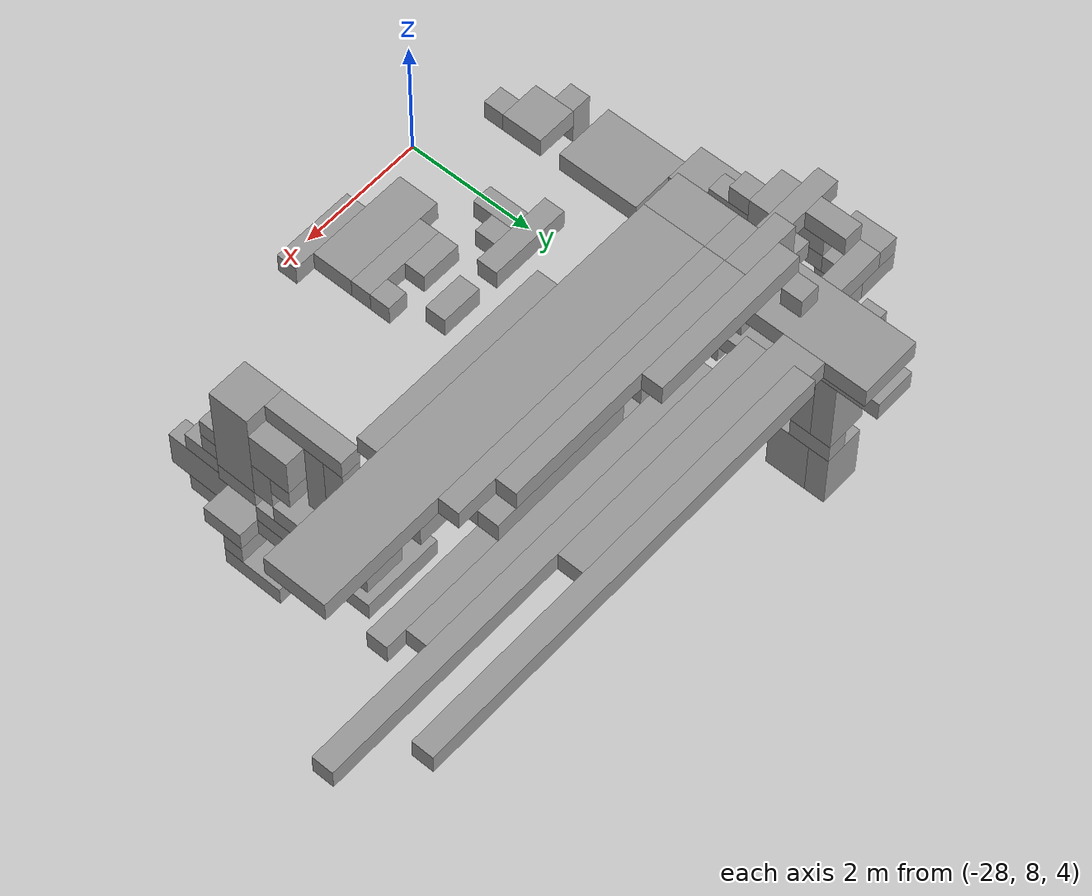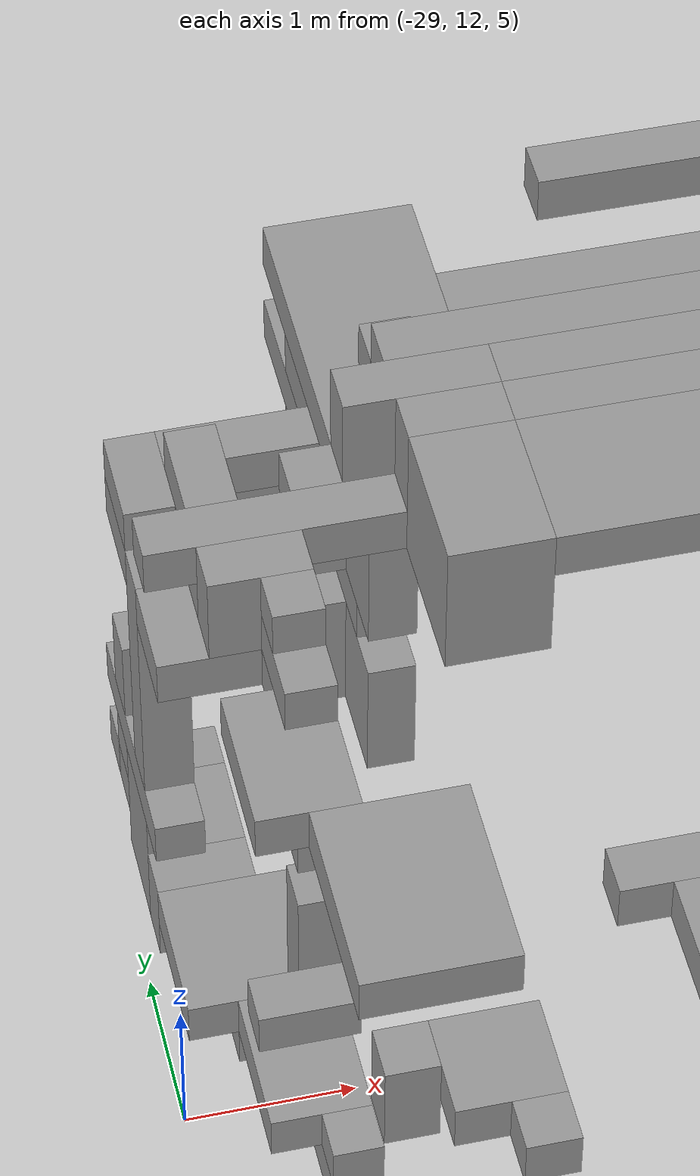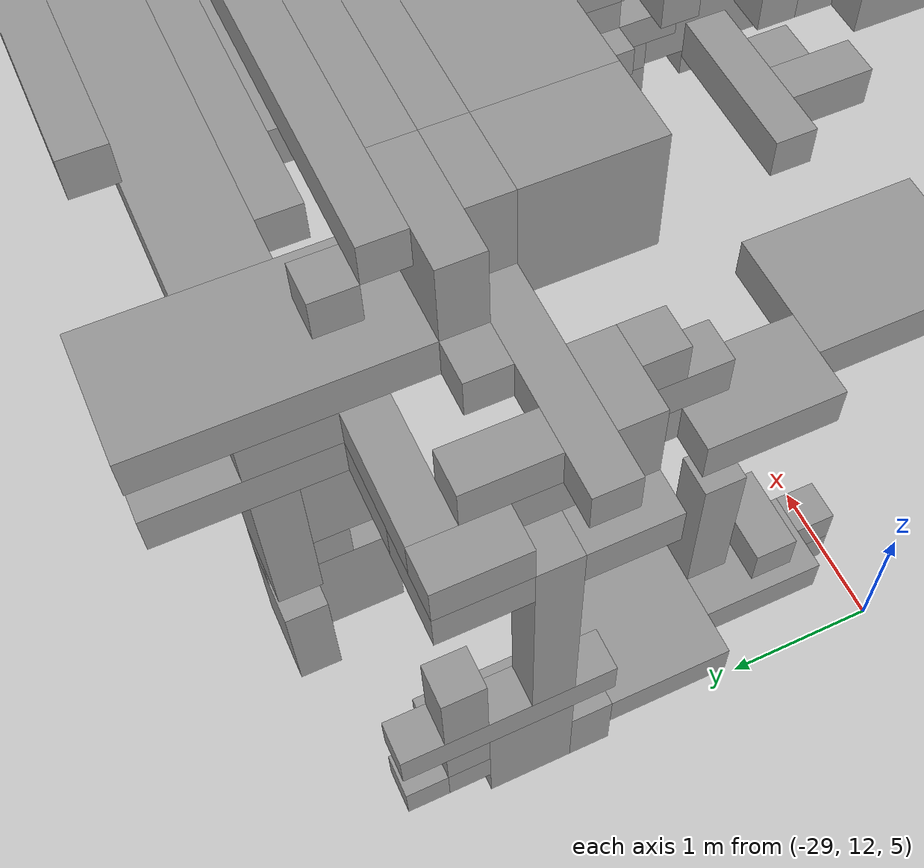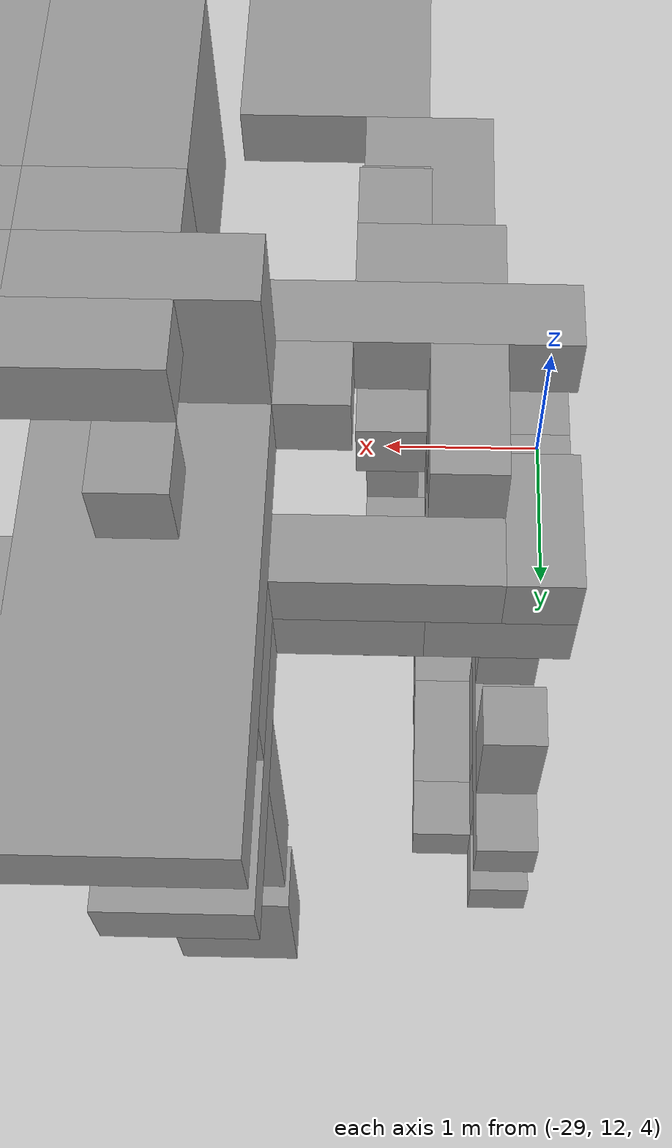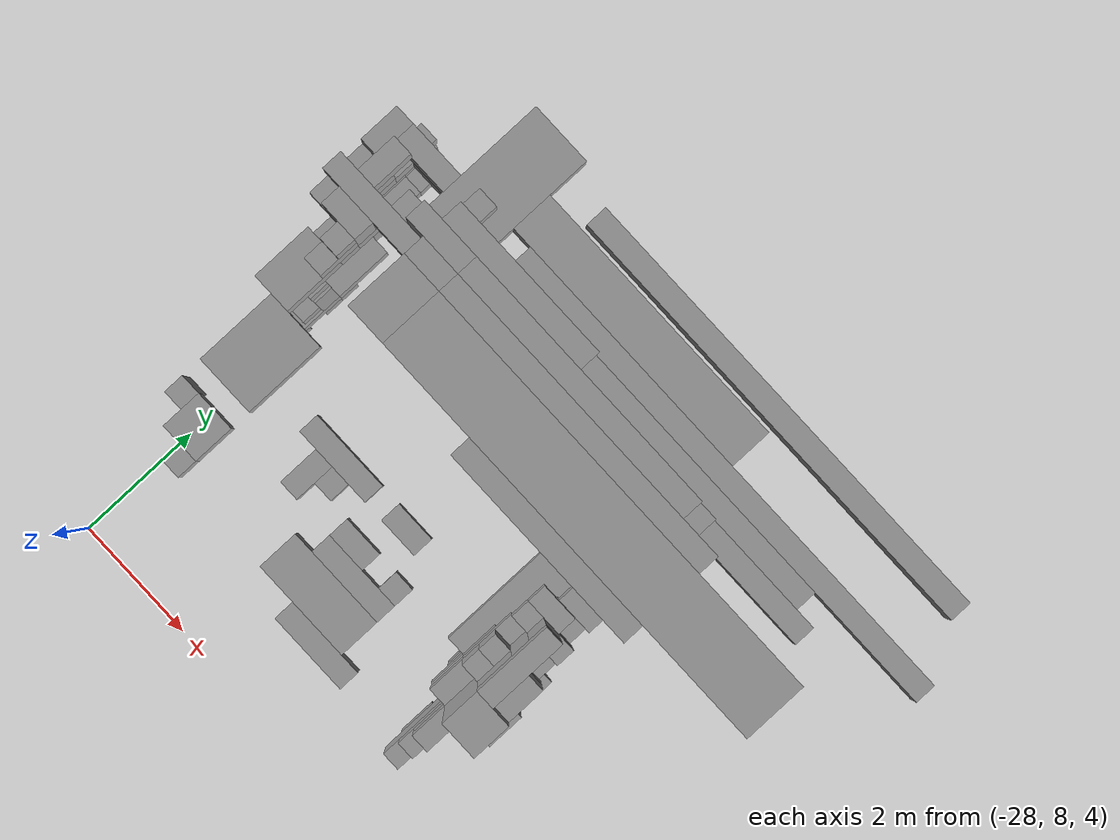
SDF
<sdf version="1.6">
 <world name="bt_world">
  <include><uri>model://sun</uri></include>
  <model name="obstacle_88">
   <static>true</static>
   <pose>-28.349999999999998 13.35 4.6499999999999995 0 0 0</pose>
   <link name="link">
    <collision name="collision">
     <geometry><box><size>0.8999999999999999 0.8999999999999999 0.3</size></box></geometry>
    </collision>
    <visual name="visual">
     <geometry><box><size>0.8999999999999999 0.8999999999999999 0.3</size></box></geometry>
     <material><ambient>0.5 0.5 0.5 1</ambient><diffuse>0.6 0.6 0.6 1</diffuse></material>
    </visual>
   </link>
  </model>
  <model name="obstacle_89">
   <static>true</static>
   <pose>-28.349999999999998 13.799999999999999 7.05 0 0 0</pose>
   <link name="link">
    <collision name="collision">
     <geometry><box><size>0.8999999999999999 0.6 0.3</size></box></geometry>
    </collision>
    <visual name="visual">
     <geometry><box><size>0.8999999999999999 0.6 0.3</size></box></geometry>
     <material><ambient>0.5 0.5 0.5 1</ambient><diffuse>0.6 0.6 0.6 1</diffuse></material>
    </visual>
   </link>
  </model>
  <model name="obstacle_90">
   <static>true</static>
   <pose>-28.5 13.95 4.5 0 0 0</pose>
   <link name="link">
    <collision name="collision"><geometry><box><size>0.6 0.3 0.6</size></box></geometry></collision>
    <visual name="visual">
     <geometry><box><size>0.6 0.3 0.6</size></box></geometry>
     <material><ambient>0.5 0.5 0.5 1</ambient><diffuse>0.6 0.6 0.6 1</diffuse></material>
    </visual>
   </link>
  </model>
  <model name="obstacle_91">
   <static>true</static>
   <pose>-28.65 14.549999999999999 5.25 0 0 0</pose>
   <link name="link">
    <collision name="collision"><geometry><box><size>0.3 1.5 0.3</size></box></geometry></collision>
    <visual name="visual">
     <geometry><box><size>0.3 1.5 0.3</size></box></geometry>
     <material><ambient>0.5 0.5 0.5 1</ambient><diffuse>0.6 0.6 0.6 1</diffuse></material>
    </visual>
   </link>
  </model>
  <model name="obstacle_92">
   <static>true</static>
   <pose>-27.75 13.95 7.6499999999999995 0 0 0</pose>
   <link name="link">
    <collision name="collision"><geometry><box><size>2.1 0.3 0.3</size></box></geometry></collision>
    <visual name="visual">
     <geometry><box><size>2.1 0.3 0.3</size></box></geometry>
     <material><ambient>0.5 0.5 0.5 1</ambient><diffuse>0.6 0.6 0.6 1</diffuse></material>
    </visual>
   </link>
  </model>
  <model name="obstacle_93">
   <static>true</static>
   <pose>-28.65 14.399999999999999 4.6499999999999995 0 0 0</pose>
   <link name="link">
    <collision name="collision">
     <geometry><box><size>0.3 0.6 0.8999999999999999</size></box></geometry>
    </collision>
    <visual name="visual">
     <geometry><box><size>0.3 0.6 0.8999999999999999</size></box></geometry>
     <material><ambient>0.5 0.5 0.5 1</ambient><diffuse>0.6 0.6 0.6 1</diffuse></material>
    </visual>
   </link>
  </model>
  <model name="obstacle_94">
   <static>true</static>
   <pose>-28.65 14.25 6.3 0 0 0</pose>
   <link name="link">
    <collision name="collision">
     <geometry><box><size>0.3 0.3 1.7999999999999998</size></box></geometry>
    </collision>
    <visual name="visual">
     <geometry><box><size>0.3 0.3 1.7999999999999998</size></box></geometry>
     <material><ambient>0.5 0.5 0.5 1</ambient><diffuse>0.6 0.6 0.6 1</diffuse></material>
    </visual>
   </link>
  </model>
  <model name="obstacle_95">
   <static>true</static>
   <pose>-28.5 14.7 7.05 0 0 0</pose>
   <link name="link">
    <collision name="collision"><geometry><box><size>0.6 0.6 0.3</size></box></geometry></collision>
    <visual name="visual">
     <geometry><box><size>0.6 0.6 0.3</size></box></geometry>
     <material><ambient>0.5 0.5 0.5 1</ambient><diffuse>0.6 0.6 0.6 1</diffuse></material>
    </visual>
   </link>
  </model>
  <model name="obstacle_96">
   <static>true</static>
   <pose>-28.65 14.7 7.35 0 0 0</pose>
   <link name="link">
    <collision name="collision"><geometry><box><size>0.3 0.6 0.3</size></box></geometry></collision>
    <visual name="visual">
     <geometry><box><size>0.3 0.6 0.3</size></box></geometry>
     <material><ambient>0.5 0.5 0.5 1</ambient><diffuse>0.6 0.6 0.6 1</diffuse></material>
    </visual>
   </link>
  </model>
  <model name="obstacle_97">
   <static>true</static>
   <pose>-28.5 14.85 4.6499999999999995 0 0 0</pose>
   <link name="link">
    <collision name="collision"><geometry><box><size>0.6 0.3 0.3</size></box></geometry></collision>
    <visual name="visual">
     <geometry><box><size>0.6 0.3 0.3</size></box></geometry>
     <material><ambient>0.5 0.5 0.5 1</ambient><diffuse>0.6 0.6 0.6 1</diffuse></material>
    </visual>
   </link>
  </model>
  <model name="obstacle_98">
   <static>true</static>
   <pose>-28.65 14.85 4.95 0 0 0</pose>
   <link name="link">
    <collision name="collision"><geometry><box><size>0.3 0.3 0.3</size></box></geometry></collision>
    <visual name="visual">
     <geometry><box><size>0.3 0.3 0.3</size></box></geometry>
     <material><ambient>0.5 0.5 0.5 1</ambient><diffuse>0.6 0.6 0.6 1</diffuse></material>
    </visual>
   </link>
  </model>
  <model name="obstacle_99">
   <static>true</static>
   <pose>-28.65 14.85 5.7 0 0 0</pose>
   <link name="link">
    <collision name="collision"><geometry><box><size>0.3 0.3 0.6</size></box></geometry></collision>
    <visual name="visual">
     <geometry><box><size>0.3 0.3 0.6</size></box></geometry>
     <material><ambient>0.5 0.5 0.5 1</ambient><diffuse>0.6 0.6 0.6 1</diffuse></material>
    </visual>
   </link>
  </model>
  <model name="obstacle_100">
   <static>true</static>
   <pose>-28.65 15.149999999999999 4.6499999999999995 0 0 0</pose>
   <link name="link">
    <collision name="collision"><geometry><box><size>0.3 0.3 0.3</size></box></geometry></collision>
    <visual name="visual">
     <geometry><box><size>0.3 0.3 0.3</size></box></geometry>
     <material><ambient>0.5 0.5 0.5 1</ambient><diffuse>0.6 0.6 0.6 1</diffuse></material>
    </visual>
   </link>
  </model>
  <model name="obstacle_112">
   <static>true</static>
   <pose>-28.2 12.45 4.6499999999999995 0 0 0</pose>
   <link name="link">
    <collision name="collision">
     <geometry><box><size>0.6 0.8999999999999999 0.3</size></box></geometry>
    </collision>
    <visual name="visual">
     <geometry><box><size>0.6 0.8999999999999999 0.3</size></box></geometry>
     <material><ambient>0.5 0.5 0.5 1</ambient><diffuse>0.6 0.6 0.6 1</diffuse></material>
    </visual>
   </link>
  </model>
  <model name="obstacle_113">
   <static>true</static>
   <pose>-28.2 12.45 5.25 0 0 0</pose>
   <link name="link">
    <collision name="collision"><geometry><box><size>0.6 0.3 0.3</size></box></geometry></collision>
    <visual name="visual">
     <geometry><box><size>0.6 0.3 0.3</size></box></geometry>
     <material><ambient>0.5 0.5 0.5 1</ambient><diffuse>0.6 0.6 0.6 1</diffuse></material>
    </visual>
   </link>
  </model>
  <model name="obstacle_114">
   <static>true</static>
   <pose>-28.2 12.75 7.05 0 0 0</pose>
   <link name="link">
    <collision name="collision">
     <geometry><box><size>0.6 0.8999999999999999 0.3</size></box></geometry>
    </collision>
    <visual name="visual">
     <geometry><box><size>0.6 0.8999999999999999 0.3</size></box></geometry>
     <material><ambient>0.5 0.5 0.5 1</ambient><diffuse>0.6 0.6 0.6 1</diffuse></material>
    </visual>
   </link>
  </model>
  <model name="obstacle_115">
   <static>true</static>
   <pose>-28.2 13.049999999999999 4.35 0 0 0</pose>
   <link name="link">
    <collision name="collision"><geometry><box><size>0.6 0.3 0.3</size></box></geometry></collision>
    <visual name="visual">
     <geometry><box><size>0.6 0.3 0.3</size></box></geometry>
     <material><ambient>0.5 0.5 0.5 1</ambient><diffuse>0.6 0.6 0.6 1</diffuse></material>
    </visual>
   </link>
  </model>
  <model name="obstacle_116">
   <static>true</static>
   <pose>-28.349999999999998 13.5 4.35 0 0 0</pose>
   <link name="link">
    <collision name="collision"><geometry><box><size>0.3 0.6 0.3</size></box></geometry></collision>
    <visual name="visual">
     <geometry><box><size>0.3 0.6 0.3</size></box></geometry>
     <material><ambient>0.5 0.5 0.5 1</ambient><diffuse>0.6 0.6 0.6 1</diffuse></material>
    </visual>
   </link>
  </model>
  <model name="obstacle_117">
   <static>true</static>
   <pose>-28.2 13.65 7.5 0 0 0</pose>
   <link name="link">
    <collision name="collision"><geometry><box><size>0.6 0.3 0.6</size></box></geometry></collision>
    <visual name="visual">
     <geometry><box><size>0.6 0.3 0.6</size></box></geometry>
     <material><ambient>0.5 0.5 0.5 1</ambient><diffuse>0.6 0.6 0.6 1</diffuse></material>
    </visual>
   </link>
  </model>
  <model name="obstacle_118">
   <static>true</static>
   <pose>-28.349999999999998 14.1 7.35 0 0 0</pose>
   <link name="link">
    <collision name="collision"><geometry><box><size>0.3 0.6 0.3</size></box></geometry></collision>
    <visual name="visual">
     <geometry><box><size>0.3 0.6 0.3</size></box></geometry>
     <material><ambient>0.5 0.5 0.5 1</ambient><diffuse>0.6 0.6 0.6 1</diffuse></material>
    </visual>
   </link>
  </model>
  <model name="obstacle_119">
   <static>true</static>
   <pose>-28.349999999999998 14.399999999999999 4.6499999999999995 0 0 0</pose>
   <link name="link">
    <collision name="collision"><geometry><box><size>0.3 0.6 0.3</size></box></geometry></collision>
    <visual name="visual">
     <geometry><box><size>0.3 0.6 0.3</size></box></geometry>
     <material><ambient>0.5 0.5 0.5 1</ambient><diffuse>0.6 0.6 0.6 1</diffuse></material>
    </visual>
   </link>
  </model>
  <model name="obstacle_120">
   <static>true</static>
   <pose>-28.349999999999998 14.25 7.05 0 0 0</pose>
   <link name="link">
    <collision name="collision"><geometry><box><size>0.3 0.3 0.3</size></box></geometry></collision>
    <visual name="visual">
     <geometry><box><size>0.3 0.3 0.3</size></box></geometry>
     <material><ambient>0.5 0.5 0.5 1</ambient><diffuse>0.6 0.6 0.6 1</diffuse></material>
    </visual>
   </link>
  </model>
  <model name="obstacle_121">
   <static>true</static>
   <pose>-28.349999999999998 14.399999999999999 7.6499999999999995 0 0 0</pose>
   <link name="link">
    <collision name="collision"><geometry><box><size>0.3 0.6 0.3</size></box></geometry></collision>
    <visual name="visual">
     <geometry><box><size>0.3 0.6 0.3</size></box></geometry>
     <material><ambient>0.5 0.5 0.5 1</ambient><diffuse>0.6 0.6 0.6 1</diffuse></material>
    </visual>
   </link>
  </model>
  <model name="obstacle_122">
   <static>true</static>
   <pose>-27.9 14.85 7.35 0 0 0</pose>
   <link name="link">
    <collision name="collision"><geometry><box><size>1.2 0.3 0.3</size></box></geometry></collision>
    <visual name="visual">
     <geometry><box><size>1.2 0.3 0.3</size></box></geometry>
     <material><ambient>0.5 0.5 0.5 1</ambient><diffuse>0.6 0.6 0.6 1</diffuse></material>
    </visual>
   </link>
  </model>
  <model name="obstacle_130">
   <static>true</static>
   <pose>-28.05 10.65 6.8999999999999995 0 0 0</pose>
   <link name="link">
    <collision name="collision"><geometry><box><size>0.3 0.3 0.6</size></box></geometry></collision>
    <visual name="visual">
     <geometry><box><size>0.3 0.3 0.6</size></box></geometry>
     <material><ambient>0.5 0.5 0.5 1</ambient><diffuse>0.6 0.6 0.6 1</diffuse></material>
    </visual>
   </link>
  </model>
  <model name="obstacle_131">
   <static>true</static>
   <pose>-27.75 11.7 7.05 0 0 0</pose>
   <link name="link">
    <collision name="collision">
     <geometry><box><size>0.8999999999999999 1.2 0.3</size></box></geometry>
    </collision>
    <visual name="visual">
     <geometry><box><size>0.8999999999999999 1.2 0.3</size></box></geometry>
     <material><ambient>0.5 0.5 0.5 1</ambient><diffuse>0.6 0.6 0.6 1</diffuse></material>
    </visual>
   </link>
  </model>
  <model name="obstacle_132">
   <static>true</static>
   <pose>-28.05 12.0 4.35 0 0 0</pose>
   <link name="link">
    <collision name="collision"><geometry><box><size>0.3 0.6 0.3</size></box></geometry></collision>
    <visual name="visual">
     <geometry><box><size>0.3 0.6 0.3</size></box></geometry>
     <material><ambient>0.5 0.5 0.5 1</ambient><diffuse>0.6 0.6 0.6 1</diffuse></material>
    </visual>
   </link>
  </model>
  <model name="obstacle_133">
   <static>true</static>
   <pose>-28.05 11.85 4.6499999999999995 0 0 0</pose>
   <link name="link">
    <collision name="collision"><geometry><box><size>0.3 0.3 0.3</size></box></geometry></collision>
    <visual name="visual">
     <geometry><box><size>0.3 0.3 0.3</size></box></geometry>
     <material><ambient>0.5 0.5 0.5 1</ambient><diffuse>0.6 0.6 0.6 1</diffuse></material>
    </visual>
   </link>
  </model>
  <model name="obstacle_134">
   <static>true</static>
   <pose>-28.05 12.75 4.35 0 0 0</pose>
   <link name="link">
    <collision name="collision"><geometry><box><size>0.3 0.3 0.3</size></box></geometry></collision>
    <visual name="visual">
     <geometry><box><size>0.3 0.3 0.3</size></box></geometry>
     <material><ambient>0.5 0.5 0.5 1</ambient><diffuse>0.6 0.6 0.6 1</diffuse></material>
    </visual>
   </link>
  </model>
  <model name="obstacle_135">
   <static>true</static>
   <pose>-28.05 12.75 5.3999999999999995 0 0 0</pose>
   <link name="link">
    <collision name="collision"><geometry><box><size>0.3 0.3 1.2</size></box></geometry></collision>
    <visual name="visual">
     <geometry><box><size>0.3 0.3 1.2</size></box></geometry>
     <material><ambient>0.5 0.5 0.5 1</ambient><diffuse>0.6 0.6 0.6 1</diffuse></material>
    </visual>
   </link>
  </model>
  <model name="obstacle_136">
   <static>true</static>
   <pose>-28.05 12.75 6.45 0 0 0</pose>
   <link name="link">
    <collision name="collision"><geometry><box><size>0.3 0.3 0.3</size></box></geometry></collision>
    <visual name="visual">
     <geometry><box><size>0.3 0.3 0.3</size></box></geometry>
     <material><ambient>0.5 0.5 0.5 1</ambient><diffuse>0.6 0.6 0.6 1</diffuse></material>
    </visual>
   </link>
  </model>
  <model name="obstacle_137">
   <static>true</static>
   <pose>-28.05 13.2 7.35 0 0 0</pose>
   <link name="link">
    <collision name="collision"><geometry><box><size>0.3 0.6 0.3</size></box></geometry></collision>
    <visual name="visual">
     <geometry><box><size>0.3 0.6 0.3</size></box></geometry>
     <material><ambient>0.5 0.5 0.5 1</ambient><diffuse>0.6 0.6 0.6 1</diffuse></material>
    </visual>
   </link>
  </model>
  <model name="obstacle_138">
   <static>true</static>
   <pose>-28.05 13.35 7.05 0 0 0</pose>
   <link name="link">
    <collision name="collision"><geometry><box><size>0.3 0.3 0.3</size></box></geometry></collision>
    <visual name="visual">
     <geometry><box><size>0.3 0.3 0.3</size></box></geometry>
     <material><ambient>0.5 0.5 0.5 1</ambient><diffuse>0.6 0.6 0.6 1</diffuse></material>
    </visual>
   </link>
  </model>
  <model name="obstacle_139">
   <static>true</static>
   <pose>-28.05 13.35 7.6499999999999995 0 0 0</pose>
   <link name="link">
    <collision name="collision"><geometry><box><size>0.3 0.3 0.3</size></box></geometry></collision>
    <visual name="visual">
     <geometry><box><size>0.3 0.3 0.3</size></box></geometry>
     <material><ambient>0.5 0.5 0.5 1</ambient><diffuse>0.6 0.6 0.6 1</diffuse></material>
    </visual>
   </link>
  </model>
  <model name="obstacle_140">
   <static>true</static>
   <pose>-27.75 14.85 7.05 0 0 0</pose>
   <link name="link">
    <collision name="collision">
     <geometry><box><size>0.8999999999999999 0.3 0.3</size></box></geometry>
    </collision>
    <visual name="visual">
     <geometry><box><size>0.8999999999999999 0.3 0.3</size></box></geometry>
     <material><ambient>0.5 0.5 0.5 1</ambient><diffuse>0.6 0.6 0.6 1</diffuse></material>
    </visual>
   </link>
  </model>
  <model name="obstacle_152">
   <static>true</static>
   <pose>-27.599999999999998 10.5 7.05 0 0 0</pose>
   <link name="link">
    <collision name="collision"><geometry><box><size>0.6 0.6 0.3</size></box></geometry></collision>
    <visual name="visual">
     <geometry><box><size>0.6 0.6 0.3</size></box></geometry>
     <material><ambient>0.5 0.5 0.5 1</ambient><diffuse>0.6 0.6 0.6 1</diffuse></material>
    </visual>
   </link>
  </model>
  <model name="obstacle_153">
   <static>true</static>
   <pose>-27.3 14.25 7.6499999999999995 0 0 0</pose>
   <link name="link">
    <collision name="collision"><geometry><box><size>1.2 0.3 0.3</size></box></geometry></collision>
    <visual name="visual">
     <geometry><box><size>1.2 0.3 0.3</size></box></geometry>
     <material><ambient>0.5 0.5 0.5 1</ambient><diffuse>0.6 0.6 0.6 1</diffuse></material>
    </visual>
   </link>
  </model>
  <model name="obstacle_159">
   <static>true</static>
   <pose>-27.45 10.049999999999999 7.05 0 0 0</pose>
   <link name="link">
    <collision name="collision"><geometry><box><size>0.3 0.3 0.3</size></box></geometry></collision>
    <visual name="visual">
     <geometry><box><size>0.3 0.3 0.3</size></box></geometry>
     <material><ambient>0.5 0.5 0.5 1</ambient><diffuse>0.6 0.6 0.6 1</diffuse></material>
    </visual>
   </link>
  </model>
  <model name="obstacle_161">
   <static>true</static>
   <pose>-27.15 14.25 8.1 0 0 0</pose>
   <link name="link">
    <collision name="collision">
     <geometry><box><size>0.8999999999999999 0.3 0.6</size></box></geometry>
    </collision>
    <visual name="visual">
     <geometry><box><size>0.8999999999999999 0.3 0.6</size></box></geometry>
     <material><ambient>0.5 0.5 0.5 1</ambient><diffuse>0.6 0.6 0.6 1</diffuse></material>
    </visual>
   </link>
  </model>
  <model name="obstacle_162">
   <static>true</static>
   <pose>-27.15 15.299999999999999 7.6499999999999995 0 0 0</pose>
   <link name="link">
    <collision name="collision">
     <geometry><box><size>0.8999999999999999 1.7999999999999998 0.3</size></box></geometry>
    </collision>
    <visual name="visual">
     <geometry><box><size>0.8999999999999999 1.7999999999999998 0.3</size></box></geometry>
     <material><ambient>0.5 0.5 0.5 1</ambient><diffuse>0.6 0.6 0.6 1</diffuse></material>
    </visual>
   </link>
  </model>
  <model name="obstacle_163">
   <static>true</static>
   <pose>-27.3 15.6 7.05 0 0 0</pose>
   <link name="link">
    <collision name="collision"><geometry><box><size>0.6 1.2 0.3</size></box></geometry></collision>
    <visual name="visual">
     <geometry><box><size>0.6 1.2 0.3</size></box></geometry>
     <material><ambient>0.5 0.5 0.5 1</ambient><diffuse>0.6 0.6 0.6 1</diffuse></material>
    </visual>
   </link>
  </model>
  <model name="obstacle_164">
   <static>true</static>
   <pose>-27.3 15.299999999999999 7.35 0 0 0</pose>
   <link name="link">
    <collision name="collision"><geometry><box><size>0.6 0.6 0.3</size></box></geometry></collision>
    <visual name="visual">
     <geometry><box><size>0.6 0.6 0.3</size></box></geometry>
     <material><ambient>0.5 0.5 0.5 1</ambient><diffuse>0.6 0.6 0.6 1</diffuse></material>
    </visual>
   </link>
  </model>
  <model name="obstacle_165">
   <static>true</static>
   <pose>-27.3 15.45 4.95 0 0 0</pose>
   <link name="link">
    <collision name="collision">
     <geometry><box><size>0.6 0.3 0.8999999999999999</size></box></geometry>
    </collision>
    <visual name="visual">
     <geometry><box><size>0.6 0.3 0.8999999999999999</size></box></geometry>
     <material><ambient>0.5 0.5 0.5 1</ambient><diffuse>0.6 0.6 0.6 1</diffuse></material>
    </visual>
   </link>
  </model>
  <model name="obstacle_166">
   <static>true</static>
   <pose>-27.3 15.45 6.3 0 0 0</pose>
   <link name="link">
    <collision name="collision"><geometry><box><size>0.6 0.3 1.2</size></box></geometry></collision>
    <visual name="visual">
     <geometry><box><size>0.6 0.3 1.2</size></box></geometry>
     <material><ambient>0.5 0.5 0.5 1</ambient><diffuse>0.6 0.6 0.6 1</diffuse></material>
    </visual>
   </link>
  </model>
  <model name="obstacle_175">
   <static>true</static>
   <pose>-27.0 13.35 7.949999999999999 0 0 0</pose>
   <link name="link">
    <collision name="collision">
     <geometry><box><size>0.6 0.8999999999999999 0.8999999999999999</size></box></geometry>
    </collision>
    <visual name="visual">
     <geometry><box><size>0.6 0.8999999999999999 0.8999999999999999</size></box></geometry>
     <material><ambient>0.5 0.5 0.5 1</ambient><diffuse>0.6 0.6 0.6 1</diffuse></material>
    </visual>
   </link>
  </model>
  <model name="obstacle_176">
   <static>true</static>
   <pose>-27.0 13.95 8.1 0 0 0</pose>
   <link name="link">
    <collision name="collision"><geometry><box><size>0.6 0.3 0.6</size></box></geometry></collision>
    <visual name="visual">
     <geometry><box><size>0.6 0.3 0.6</size></box></geometry>
     <material><ambient>0.5 0.5 0.5 1</ambient><diffuse>0.6 0.6 0.6 1</diffuse></material>
    </visual>
   </link>
  </model>
  <model name="obstacle_177">
   <static>true</static>
   <pose>-26.099999999999998 14.549999999999999 8.25 0 0 0</pose>
   <link name="link">
    <collision name="collision"><geometry><box><size>2.4 0.3 0.3</size></box></geometry></collision>
    <visual name="visual">
     <geometry><box><size>2.4 0.3 0.3</size></box></geometry>
     <material><ambient>0.5 0.5 0.5 1</ambient><diffuse>0.6 0.6 0.6 1</diffuse></material>
    </visual>
   </link>
  </model>
  <model name="obstacle_178">
   <static>true</static>
   <pose>-27.15 15.0 4.95 0 0 0</pose>
   <link name="link">
    <collision name="collision">
     <geometry><box><size>0.3 0.6 0.8999999999999999</size></box></geometry>
    </collision>
    <visual name="visual">
     <geometry><box><size>0.3 0.6 0.8999999999999999</size></box></geometry>
     <material><ambient>0.5 0.5 0.5 1</ambient><diffuse>0.6 0.6 0.6 1</diffuse></material>
    </visual>
   </link>
  </model>
  <model name="obstacle_179">
   <static>true</static>
   <pose>-27.15 15.0 6.1499999999999995 0 0 0</pose>
   <link name="link">
    <collision name="collision">
     <geometry><box><size>0.3 0.6 0.8999999999999999</size></box></geometry>
    </collision>
    <visual name="visual">
     <geometry><box><size>0.3 0.6 0.8999999999999999</size></box></geometry>
     <material><ambient>0.5 0.5 0.5 1</ambient><diffuse>0.6 0.6 0.6 1</diffuse></material>
    </visual>
   </link>
  </model>
  <model name="obstacle_180">
   <static>true</static>
   <pose>-27.15 14.85 7.949999999999999 0 0 0</pose>
   <link name="link">
    <collision name="collision"><geometry><box><size>0.3 0.3 0.3</size></box></geometry></collision>
    <visual name="visual">
     <geometry><box><size>0.3 0.3 0.3</size></box></geometry>
     <material><ambient>0.5 0.5 0.5 1</ambient><diffuse>0.6 0.6 0.6 1</diffuse></material>
    </visual>
   </link>
  </model>
  <model name="obstacle_181">
   <static>true</static>
   <pose>-27.15 15.299999999999999 5.55 0 0 0</pose>
   <link name="link">
    <collision name="collision"><geometry><box><size>0.3 0.6 0.3</size></box></geometry></collision>
    <visual name="visual">
     <geometry><box><size>0.3 0.6 0.3</size></box></geometry>
     <material><ambient>0.5 0.5 0.5 1</ambient><diffuse>0.6 0.6 0.6 1</diffuse></material>
    </visual>
   </link>
  </model>
  <model name="obstacle_182">
   <static>true</static>
   <pose>-27.15 15.149999999999999 6.75 0 0 0</pose>
   <link name="link">
    <collision name="collision"><geometry><box><size>0.3 0.3 0.3</size></box></geometry></collision>
    <visual name="visual">
     <geometry><box><size>0.3 0.3 0.3</size></box></geometry>
     <material><ambient>0.5 0.5 0.5 1</ambient><diffuse>0.6 0.6 0.6 1</diffuse></material>
    </visual>
   </link>
  </model>
  <model name="obstacle_183">
   <static>true</static>
   <pose>-27.15 15.75 7.35 0 0 0</pose>
   <link name="link">
    <collision name="collision"><geometry><box><size>0.3 0.3 0.3</size></box></geometry></collision>
    <visual name="visual">
     <geometry><box><size>0.3 0.3 0.3</size></box></geometry>
     <material><ambient>0.5 0.5 0.5 1</ambient><diffuse>0.6 0.6 0.6 1</diffuse></material>
    </visual>
   </link>
  </model>
  <model name="obstacle_185">
   <static>true</static>
   <pose>-26.849999999999998 14.25 7.35 0 0 0</pose>
   <link name="link">
    <collision name="collision"><geometry><box><size>0.3 0.3 0.3</size></box></geometry></collision>
    <visual name="visual">
     <geometry><box><size>0.3 0.3 0.3</size></box></geometry>
     <material><ambient>0.5 0.5 0.5 1</ambient><diffuse>0.6 0.6 0.6 1</diffuse></material>
    </visual>
   </link>
  </model>
  <model name="obstacle_191">
   <static>true</static>
   <pose>-26.099999999999998 11.549999999999999 7.05 0 0 0</pose>
   <link name="link">
    <collision name="collision"><geometry><box><size>1.2 0.3 0.3</size></box></geometry></collision>
    <visual name="visual">
     <geometry><box><size>1.2 0.3 0.3</size></box></geometry>
     <material><ambient>0.5 0.5 0.5 1</ambient><diffuse>0.6 0.6 0.6 1</diffuse></material>
    </visual>
   </link>
  </model>
  <model name="obstacle_192">
   <static>true</static>
   <pose>-23.55 13.35 8.25 0 0 0</pose>
   <link name="link">
    <collision name="collision">
     <geometry><box><size>6.3 0.8999999999999999 0.3</size></box></geometry>
    </collision>
    <visual name="visual">
     <geometry><box><size>6.3 0.8999999999999999 0.3</size></box></geometry>
     <material><ambient>0.5 0.5 0.5 1</ambient><diffuse>0.6 0.6 0.6 1</diffuse></material>
    </visual>
   </link>
  </model>
  <model name="obstacle_193">
   <static>true</static>
   <pose>-24.45 13.95 8.25 0 0 0</pose>
   <link name="link">
    <collision name="collision"><geometry><box><size>4.5 0.3 0.3</size></box></geometry></collision>
    <visual name="visual">
     <geometry><box><size>4.5 0.3 0.3</size></box></geometry>
     <material><ambient>0.5 0.5 0.5 1</ambient><diffuse>0.6 0.6 0.6 1</diffuse></material>
    </visual>
   </link>
  </model>
  <model name="obstacle_194">
   <static>true</static>
   <pose>-24.75 14.25 8.25 0 0 0</pose>
   <link name="link">
    <collision name="collision"><geometry><box><size>3.9 0.3 0.3</size></box></geometry></collision>
    <visual name="visual">
     <geometry><box><size>3.9 0.3 0.3</size></box></geometry>
     <material><ambient>0.5 0.5 0.5 1</ambient><diffuse>0.6 0.6 0.6 1</diffuse></material>
    </visual>
   </link>
  </model>
  <model name="obstacle_195">
   <static>true</static>
   <pose>-24.75 15.299999999999999 7.6499999999999995 0 0 0</pose>
   <link name="link">
    <collision name="collision"><geometry><box><size>3.9 0.6 0.3</size></box></geometry></collision>
    <visual name="visual">
     <geometry><box><size>3.9 0.6 0.3</size></box></geometry>
     <material><ambient>0.5 0.5 0.5 1</ambient><diffuse>0.6 0.6 0.6 1</diffuse></material>
    </visual>
   </link>
  </model>
  <model name="obstacle_202">
   <static>true</static>
   <pose>-26.25 11.1 7.05 0 0 0</pose>
   <link name="link">
    <collision name="collision"><geometry><box><size>0.3 0.6 0.3</size></box></geometry></collision>
    <visual name="visual">
     <geometry><box><size>0.3 0.6 0.3</size></box></geometry>
     <material><ambient>0.5 0.5 0.5 1</ambient><diffuse>0.6 0.6 0.6 1</diffuse></material>
    </visual>
   </link>
  </model>
  <model name="obstacle_204">
   <static>true</static>
   <pose>-22.8 14.85 7.6499999999999995 0 0 0</pose>
   <link name="link">
    <collision name="collision"><geometry><box><size>7.199999999999999 0.3 0.3</size></box></geometry></collision>
    <visual name="visual">
     <geometry><box><size>7.199999999999999 0.3 0.3</size></box></geometry>
     <material><ambient>0.5 0.5 0.5 1</ambient><diffuse>0.6 0.6 0.6 1</diffuse></material>
    </visual>
   </link>
  </model>
  <model name="obstacle_218">
   <static>true</static>
   <pose>-25.95 11.25 7.05 0 0 0</pose>
   <link name="link">
    <collision name="collision"><geometry><box><size>0.3 0.3 0.3</size></box></geometry></collision>
    <visual name="visual">
     <geometry><box><size>0.3 0.3 0.3</size></box></geometry>
     <material><ambient>0.5 0.5 0.5 1</ambient><diffuse>0.6 0.6 0.6 1</diffuse></material>
    </visual>
   </link>
  </model>
  <model name="obstacle_219">
   <static>true</static>
   <pose>-22.95 15.75 8.25 0 0 0</pose>
   <link name="link">
    <collision name="collision"><geometry><box><size>6.3 0.3 0.3</size></box></geometry></collision>
    <visual name="visual">
     <geometry><box><size>6.3 0.3 0.3</size></box></geometry>
     <material><ambient>0.5 0.5 0.5 1</ambient><diffuse>0.6 0.6 0.6 1</diffuse></material>
    </visual>
   </link>
  </model>
  <model name="obstacle_229">
   <static>true</static>
   <pose>-25.05 10.2 7.05 0 0 0</pose>
   <link name="link">
    <collision name="collision"><geometry><box><size>1.5 0.6 0.3</size></box></geometry></collision>
    <visual name="visual">
     <geometry><box><size>1.5 0.6 0.3</size></box></geometry>
     <material><ambient>0.5 0.5 0.5 1</ambient><diffuse>0.6 0.6 0.6 1</diffuse></material>
    </visual>
   </link>
  </model>
  <model name="obstacle_230">
   <static>true</static>
   <pose>-23.25 14.25 7.6499999999999995 0 0 0</pose>
   <link name="link">
    <collision name="collision"><geometry><box><size>5.1 0.3 0.3</size></box></geometry></collision>
    <visual name="visual">
     <geometry><box><size>5.1 0.3 0.3</size></box></geometry>
     <material><ambient>0.5 0.5 0.5 1</ambient><diffuse>0.6 0.6 0.6 1</diffuse></material>
    </visual>
   </link>
  </model>
  <model name="obstacle_231">
   <static>true</static>
   <pose>-23.4 14.549999999999999 7.6499999999999995 0 0 0</pose>
   <link name="link">
    <collision name="collision"><geometry><box><size>4.8 0.3 0.3</size></box></geometry></collision>
    <visual name="visual">
     <geometry><box><size>4.8 0.3 0.3</size></box></geometry>
     <material><ambient>0.5 0.5 0.5 1</ambient><diffuse>0.6 0.6 0.6 1</diffuse></material>
    </visual>
   </link>
  </model>
  <model name="obstacle_243">
   <static>true</static>
   <pose>-24.9 10.65 7.05 0 0 0</pose>
   <link name="link">
    <collision name="collision"><geometry><box><size>1.2 0.3 0.3</size></box></geometry></collision>
    <visual name="visual">
     <geometry><box><size>1.2 0.3 0.3</size></box></geometry>
     <material><ambient>0.5 0.5 0.5 1</ambient><diffuse>0.6 0.6 0.6 1</diffuse></material>
    </visual>
   </link>
  </model>
  <model name="obstacle_244">
   <static>true</static>
   <pose>-25.2 10.95 7.05 0 0 0</pose>
   <link name="link">
    <collision name="collision"><geometry><box><size>0.6 0.3 0.3</size></box></geometry></collision>
    <visual name="visual">
     <geometry><box><size>0.6 0.3 0.3</size></box></geometry>
     <material><ambient>0.5 0.5 0.5 1</ambient><diffuse>0.6 0.6 0.6 1</diffuse></material>
    </visual>
   </link>
  </model>
  <model name="obstacle_271">
   <static>true</static>
   <pose>-24.599999999999998 9.75 7.05 0 0 0</pose>
   <link name="link">
    <collision name="collision"><geometry><box><size>1.2 0.3 0.3</size></box></geometry></collision>
    <visual name="visual">
     <geometry><box><size>1.2 0.3 0.3</size></box></geometry>
     <material><ambient>0.5 0.5 0.5 1</ambient><diffuse>0.6 0.6 0.6 1</diffuse></material>
    </visual>
   </link>
  </model>
  <model name="obstacle_273">
   <static>true</static>
   <pose>-24.9 11.549999999999999 7.05 0 0 0</pose>
   <link name="link">
    <collision name="collision"><geometry><box><size>0.6 0.3 0.3</size></box></geometry></collision>
    <visual name="visual">
     <geometry><box><size>0.6 0.3 0.3</size></box></geometry>
     <material><ambient>0.5 0.5 0.5 1</ambient><diffuse>0.6 0.6 0.6 1</diffuse></material>
    </visual>
   </link>
  </model>
  <model name="obstacle_274">
   <static>true</static>
   <pose>-23.7 12.75 8.25 0 0 0</pose>
   <link name="link">
    <collision name="collision"><geometry><box><size>3.0 0.3 0.3</size></box></geometry></collision>
    <visual name="visual">
     <geometry><box><size>3.0 0.3 0.3</size></box></geometry>
     <material><ambient>0.5 0.5 0.5 1</ambient><diffuse>0.6 0.6 0.6 1</diffuse></material>
    </visual>
   </link>
  </model>
  <model name="obstacle_275">
   <static>true</static>
   <pose>-25.05 14.25 7.949999999999999 0 0 0</pose>
   <link name="link">
    <collision name="collision"><geometry><box><size>0.3 0.3 0.3</size></box></geometry></collision>
    <visual name="visual">
     <geometry><box><size>0.3 0.3 0.3</size></box></geometry>
     <material><ambient>0.5 0.5 0.5 1</ambient><diffuse>0.6 0.6 0.6 1</diffuse></material>
    </visual>
   </link>
  </model>
  <model name="obstacle_356">
   <static>true</static>
   <pose>-24.45 10.95 7.05 0 0 0</pose>
   <link name="link">
    <collision name="collision"><geometry><box><size>0.3 0.3 0.3</size></box></geometry></collision>
    <visual name="visual">
     <geometry><box><size>0.3 0.3 0.3</size></box></geometry>
     <material><ambient>0.5 0.5 0.5 1</ambient><diffuse>0.6 0.6 0.6 1</diffuse></material>
    </visual>
   </link>
  </model>
  <model name="obstacle_358">
   <static>true</static>
   <pose>-23.55 14.25 7.949999999999999 0 0 0</pose>
   <link name="link">
    <collision name="collision"><geometry><box><size>2.1 0.3 0.3</size></box></geometry></collision>
    <visual name="visual">
     <geometry><box><size>2.1 0.3 0.3</size></box></geometry>
     <material><ambient>0.5 0.5 0.5 1</ambient><diffuse>0.6 0.6 0.6 1</diffuse></material>
    </visual>
   </link>
  </model>
  <model name="obstacle_393">
   <static>true</static>
   <pose>-23.4 13.95 7.949999999999999 0 0 0</pose>
   <link name="link">
    <collision name="collision">
     <geometry><box><size>1.7999999999999998 0.3 0.3</size></box></geometry>
    </collision>
    <visual name="visual">
     <geometry><box><size>1.7999999999999998 0.3 0.3</size></box></geometry>
     <material><ambient>0.5 0.5 0.5 1</ambient><diffuse>0.6 0.6 0.6 1</diffuse></material>
    </visual>
   </link>
  </model>
  <model name="obstacle_487">
   <static>true</static>
   <pose>-22.8 11.7 4.6499999999999995 0 0 0</pose>
   <link name="link">
    <collision name="collision">
     <geometry><box><size>1.2 1.7999999999999998 0.3</size></box></geometry>
    </collision>
    <visual name="visual">
     <geometry><box><size>1.2 1.7999999999999998 0.3</size></box></geometry>
     <material><ambient>0.5 0.5 0.5 1</ambient><diffuse>0.6 0.6 0.6 1</diffuse></material>
    </visual>
   </link>
  </model>
  <model name="obstacle_488">
   <static>true</static>
   <pose>-22.65 13.65 7.949999999999999 0 0 0</pose>
   <link name="link">
    <collision name="collision"><geometry><box><size>1.5 0.3 0.3</size></box></geometry></collision>
    <visual name="visual">
     <geometry><box><size>1.5 0.3 0.3</size></box></geometry>
     <material><ambient>0.5 0.5 0.5 1</ambient><diffuse>0.6 0.6 0.6 1</diffuse></material>
    </visual>
   </link>
  </model>
  <model name="obstacle_489">
   <static>true</static>
   <pose>-23.25 14.25 7.199999999999999 0 0 0</pose>
   <link name="link">
    <collision name="collision"><geometry><box><size>0.3 0.3 0.6</size></box></geometry></collision>
    <visual name="visual">
     <geometry><box><size>0.3 0.3 0.6</size></box></geometry>
     <material><ambient>0.5 0.5 0.5 1</ambient><diffuse>0.6 0.6 0.6 1</diffuse></material>
    </visual>
   </link>
  </model>
  <model name="obstacle_512">
   <static>true</static>
   <pose>-22.5 10.5 4.6499999999999995 0 0 0</pose>
   <link name="link">
    <collision name="collision"><geometry><box><size>1.2 0.6 0.3</size></box></geometry></collision>
    <visual name="visual">
     <geometry><box><size>1.2 0.6 0.3</size></box></geometry>
     <material><ambient>0.5 0.5 0.5 1</ambient><diffuse>0.6 0.6 0.6 1</diffuse></material>
    </visual>
   </link>
  </model>
  <model name="obstacle_513">
   <static>true</static>
   <pose>-22.65 10.5 5.25 0 0 0</pose>
   <link name="link">
    <collision name="collision">
     <geometry><box><size>0.8999999999999999 0.6 0.3</size></box></geometry>
    </collision>
    <visual name="visual">
     <geometry><box><size>0.8999999999999999 0.6 0.3</size></box></geometry>
     <material><ambient>0.5 0.5 0.5 1</ambient><diffuse>0.6 0.6 0.6 1</diffuse></material>
    </visual>
   </link>
  </model>
  <model name="obstacle_514">
   <static>true</static>
   <pose>-22.5 10.95 4.05 0 0 0</pose>
   <link name="link">
    <collision name="collision">
     <geometry><box><size>1.2 0.8999999999999999 0.3</size></box></geometry>
    </collision>
    <visual name="visual">
     <geometry><box><size>1.2 0.8999999999999999 0.3</size></box></geometry>
     <material><ambient>0.5 0.5 0.5 1</ambient><diffuse>0.6 0.6 0.6 1</diffuse></material>
    </visual>
   </link>
  </model>
  <model name="obstacle_515">
   <static>true</static>
   <pose>-22.5 10.65 4.35 0 0 0</pose>
   <link name="link">
    <collision name="collision"><geometry><box><size>1.2 0.3 0.3</size></box></geometry></collision>
    <visual name="visual">
     <geometry><box><size>1.2 0.3 0.3</size></box></geometry>
     <material><ambient>0.5 0.5 0.5 1</ambient><diffuse>0.6 0.6 0.6 1</diffuse></material>
    </visual>
   </link>
  </model>
  <model name="obstacle_516">
   <static>true</static>
   <pose>-22.95 11.4 4.35 0 0 0</pose>
   <link name="link">
    <collision name="collision"><geometry><box><size>0.3 1.2 0.3</size></box></geometry></collision>
    <visual name="visual">
     <geometry><box><size>0.3 1.2 0.3</size></box></geometry>
     <material><ambient>0.5 0.5 0.5 1</ambient><diffuse>0.6 0.6 0.6 1</diffuse></material>
    </visual>
   </link>
  </model>
  <model name="obstacle_517">
   <static>true</static>
   <pose>-22.65 11.1 4.95 0 0 0</pose>
   <link name="link">
    <collision name="collision">
     <geometry><box><size>0.8999999999999999 0.6 0.3</size></box></geometry>
    </collision>
    <visual name="visual">
     <geometry><box><size>0.8999999999999999 0.6 0.3</size></box></geometry>
     <material><ambient>0.5 0.5 0.5 1</ambient><diffuse>0.6 0.6 0.6 1</diffuse></material>
    </visual>
   </link>
  </model>
  <model name="obstacle_518">
   <static>true</static>
   <pose>-22.95 11.25 5.25 0 0 0</pose>
   <link name="link">
    <collision name="collision">
     <geometry><box><size>0.3 0.8999999999999999 0.3</size></box></geometry>
    </collision>
    <visual name="visual">
     <geometry><box><size>0.3 0.8999999999999999 0.3</size></box></geometry>
     <material><ambient>0.5 0.5 0.5 1</ambient><diffuse>0.6 0.6 0.6 1</diffuse></material>
    </visual>
   </link>
  </model>
  <model name="obstacle_519">
   <static>true</static>
   <pose>-22.65 10.95 5.7 0 0 0</pose>
   <link name="link">
    <collision name="collision">
     <geometry><box><size>0.8999999999999999 0.3 0.6</size></box></geometry>
    </collision>
    <visual name="visual">
     <geometry><box><size>0.8999999999999999 0.3 0.6</size></box></geometry>
     <material><ambient>0.5 0.5 0.5 1</ambient><diffuse>0.6 0.6 0.6 1</diffuse></material>
    </visual>
   </link>
  </model>
  <model name="obstacle_520">
   <static>true</static>
   <pose>-22.95 11.25 5.7 0 0 0</pose>
   <link name="link">
    <collision name="collision"><geometry><box><size>0.3 0.3 0.6</size></box></geometry></collision>
    <visual name="visual">
     <geometry><box><size>0.3 0.3 0.6</size></box></geometry>
     <material><ambient>0.5 0.5 0.5 1</ambient><diffuse>0.6 0.6 0.6 1</diffuse></material>
    </visual>
   </link>
  </model>
  <model name="obstacle_521">
   <static>true</static>
   <pose>-22.65 11.85 5.55 0 0 0</pose>
   <link name="link">
    <collision name="collision">
     <geometry><box><size>0.8999999999999999 0.3 0.3</size></box></geometry>
    </collision>
    <visual name="visual">
     <geometry><box><size>0.8999999999999999 0.3 0.3</size></box></geometry>
     <material><ambient>0.5 0.5 0.5 1</ambient><diffuse>0.6 0.6 0.6 1</diffuse></material>
    </visual>
   </link>
  </model>
  <model name="obstacle_522">
   <static>true</static>
   <pose>-22.8 12.15 5.55 0 0 0</pose>
   <link name="link">
    <collision name="collision"><geometry><box><size>0.6 0.3 0.3</size></box></geometry></collision>
    <visual name="visual">
     <geometry><box><size>0.6 0.3 0.3</size></box></geometry>
     <material><ambient>0.5 0.5 0.5 1</ambient><diffuse>0.6 0.6 0.6 1</diffuse></material>
    </visual>
   </link>
  </model>
  <model name="obstacle_539">
   <static>true</static>
   <pose>-22.65 9.75 4.2 0 0 0</pose>
   <link name="link">
    <collision name="collision"><geometry><box><size>0.3 1.5 0.6</size></box></geometry></collision>
    <visual name="visual">
     <geometry><box><size>0.3 1.5 0.6</size></box></geometry>
     <material><ambient>0.5 0.5 0.5 1</ambient><diffuse>0.6 0.6 0.6 1</diffuse></material>
    </visual>
   </link>
  </model>
  <model name="obstacle_540">
   <static>true</static>
   <pose>-22.65 9.6 3.75 0 0 0</pose>
   <link name="link">
    <collision name="collision"><geometry><box><size>0.3 0.6 0.3</size></box></geometry></collision>
    <visual name="visual">
     <geometry><box><size>0.3 0.6 0.3</size></box></geometry>
     <material><ambient>0.5 0.5 0.5 1</ambient><diffuse>0.6 0.6 0.6 1</diffuse></material>
    </visual>
   </link>
  </model>
  <model name="obstacle_541">
   <static>true</static>
   <pose>-22.65 9.75 4.6499999999999995 0 0 0</pose>
   <link name="link">
    <collision name="collision">
     <geometry><box><size>0.3 0.8999999999999999 0.3</size></box></geometry>
    </collision>
    <visual name="visual">
     <geometry><box><size>0.3 0.8999999999999999 0.3</size></box></geometry>
     <material><ambient>0.5 0.5 0.5 1</ambient><diffuse>0.6 0.6 0.6 1</diffuse></material>
    </visual>
   </link>
  </model>
  <model name="obstacle_542">
   <static>true</static>
   <pose>-22.65 10.2 4.95 0 0 0</pose>
   <link name="link">
    <collision name="collision"><geometry><box><size>0.3 1.2 0.3</size></box></geometry></collision>
    <visual name="visual">
     <geometry><box><size>0.3 1.2 0.3</size></box></geometry>
     <material><ambient>0.5 0.5 0.5 1</ambient><diffuse>0.6 0.6 0.6 1</diffuse></material>
    </visual>
   </link>
  </model>
  <model name="obstacle_543">
   <static>true</static>
   <pose>-22.65 9.9 5.25 0 0 0</pose>
   <link name="link">
    <collision name="collision"><geometry><box><size>0.3 0.6 0.3</size></box></geometry></collision>
    <visual name="visual">
     <geometry><box><size>0.3 0.6 0.3</size></box></geometry>
     <material><ambient>0.5 0.5 0.5 1</ambient><diffuse>0.6 0.6 0.6 1</diffuse></material>
    </visual>
   </link>
  </model>
  <model name="obstacle_547">
   <static>true</static>
   <pose>-22.5 10.5 6.1499999999999995 0 0 0</pose>
   <link name="link">
    <collision name="collision"><geometry><box><size>0.6 0.6 1.5</size></box></geometry></collision>
    <visual name="visual">
     <geometry><box><size>0.6 0.6 1.5</size></box></geometry>
     <material><ambient>0.5 0.5 0.5 1</ambient><diffuse>0.6 0.6 0.6 1</diffuse></material>
    </visual>
   </link>
  </model>
  <model name="obstacle_548">
   <static>true</static>
   <pose>-22.5 11.1 6.3 0 0 0</pose>
   <link name="link">
    <collision name="collision"><geometry><box><size>0.6 0.6 0.6</size></box></geometry></collision>
    <visual name="visual">
     <geometry><box><size>0.6 0.6 0.6</size></box></geometry>
     <material><ambient>0.5 0.5 0.5 1</ambient><diffuse>0.6 0.6 0.6 1</diffuse></material>
    </visual>
   </link>
  </model>
  <model name="obstacle_549">
   <static>true</static>
   <pose>-22.65 11.4 6.75 0 0 0</pose>
   <link name="link">
    <collision name="collision"><geometry><box><size>0.3 1.2 0.3</size></box></geometry></collision>
    <visual name="visual">
     <geometry><box><size>0.3 1.2 0.3</size></box></geometry>
     <material><ambient>0.5 0.5 0.5 1</ambient><diffuse>0.6 0.6 0.6 1</diffuse></material>
    </visual>
   </link>
  </model>
  <model name="obstacle_550">
   <static>true</static>
   <pose>-22.5 11.549999999999999 4.35 0 0 0</pose>
   <link name="link">
    <collision name="collision">
     <geometry><box><size>0.6 0.8999999999999999 0.3</size></box></geometry>
    </collision>
    <visual name="visual">
     <geometry><box><size>0.6 0.8999999999999999 0.3</size></box></geometry>
     <material><ambient>0.5 0.5 0.5 1</ambient><diffuse>0.6 0.6 0.6 1</diffuse></material>
    </visual>
   </link>
  </model>
  <model name="obstacle_551">
   <static>true</static>
   <pose>-22.5 11.549999999999999 5.25 0 0 0</pose>
   <link name="link">
    <collision name="collision">
     <geometry><box><size>0.6 0.8999999999999999 0.3</size></box></geometry>
    </collision>
    <visual name="visual">
     <geometry><box><size>0.6 0.8999999999999999 0.3</size></box></geometry>
     <material><ambient>0.5 0.5 0.5 1</ambient><diffuse>0.6 0.6 0.6 1</diffuse></material>
    </visual>
   </link>
  </model>
  <model name="obstacle_552">
   <static>true</static>
   <pose>-22.5 11.25 5.85 0 0 0</pose>
   <link name="link">
    <collision name="collision"><geometry><box><size>0.6 0.3 0.3</size></box></geometry></collision>
    <visual name="visual">
     <geometry><box><size>0.6 0.3 0.3</size></box></geometry>
     <material><ambient>0.5 0.5 0.5 1</ambient><diffuse>0.6 0.6 0.6 1</diffuse></material>
    </visual>
   </link>
  </model>
  <model name="obstacle_554">
   <static>true</static>
   <pose>-22.65 11.85 4.95 0 0 0</pose>
   <link name="link">
    <collision name="collision">
     <geometry><box><size>0.3 0.8999999999999999 0.3</size></box></geometry>
    </collision>
    <visual name="visual">
     <geometry><box><size>0.3 0.8999999999999999 0.3</size></box></geometry>
     <material><ambient>0.5 0.5 0.5 1</ambient><diffuse>0.6 0.6 0.6 1</diffuse></material>
    </visual>
   </link>
  </model>
  <model name="obstacle_555">
   <static>true</static>
   <pose>-22.65 11.549999999999999 6.0 0 0 0</pose>
   <link name="link">
    <collision name="collision"><geometry><box><size>0.3 0.3 1.2</size></box></geometry></collision>
    <visual name="visual">
     <geometry><box><size>0.3 0.3 1.2</size></box></geometry>
     <material><ambient>0.5 0.5 0.5 1</ambient><diffuse>0.6 0.6 0.6 1</diffuse></material>
    </visual>
   </link>
  </model>
  <model name="obstacle_556">
   <static>true</static>
   <pose>-22.65 11.85 6.1499999999999995 0 0 0</pose>
   <link name="link">
    <collision name="collision">
     <geometry><box><size>0.3 0.3 0.8999999999999999</size></box></geometry>
    </collision>
    <visual name="visual">
     <geometry><box><size>0.3 0.3 0.8999999999999999</size></box></geometry>
     <material><ambient>0.5 0.5 0.5 1</ambient><diffuse>0.6 0.6 0.6 1</diffuse></material>
    </visual>
   </link>
  </model>
  <model name="obstacle_557">
   <static>true</static>
   <pose>-22.5 12.45 5.25 0 0 0</pose>
   <link name="link">
    <collision name="collision"><geometry><box><size>0.6 0.3 0.3</size></box></geometry></collision>
    <visual name="visual">
     <geometry><box><size>0.6 0.3 0.3</size></box></geometry>
     <material><ambient>0.5 0.5 0.5 1</ambient><diffuse>0.6 0.6 0.6 1</diffuse></material>
    </visual>
   </link>
  </model>
 </world>
</sdf>
